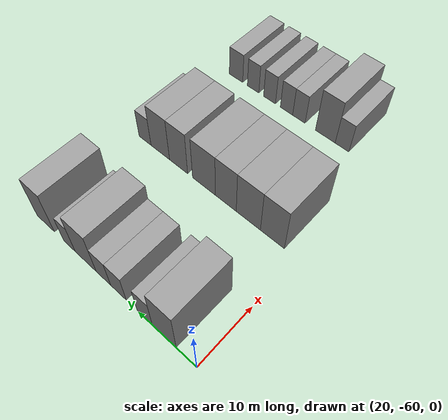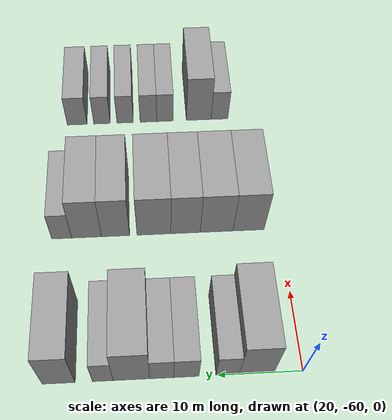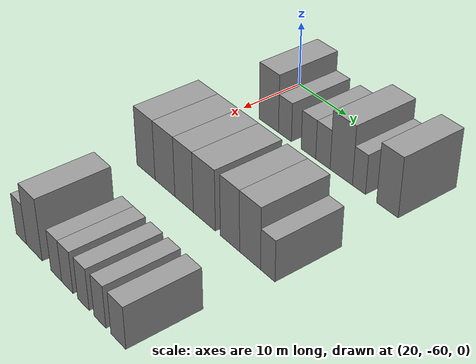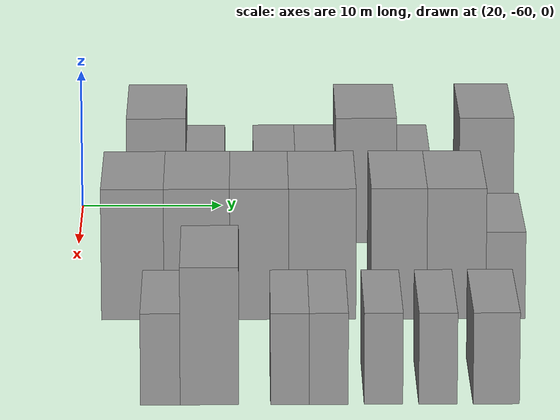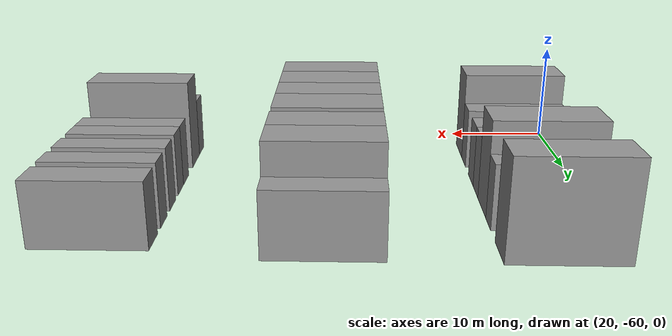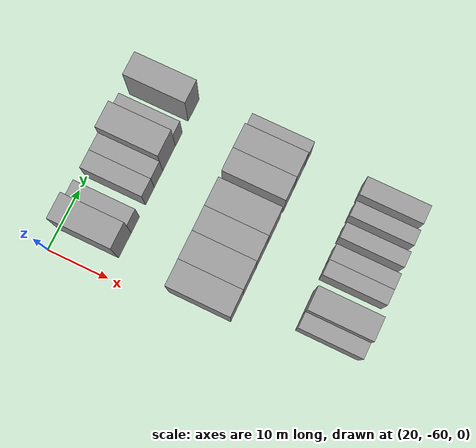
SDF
<sdf version="1.6">
 <world name="default">
  <model name="building_39">
   <static>1</static>
   <pose>25.0000 -54.5191 0 0.000000 0.000000 0.000000</pose>
   <link name="link">
    <pose>0 0 4.50 0 0 0</pose>
    <collision name="collision"><geometry><box><size>10.0000 4.1475 9.0000</size></box></geometry></collision>
    <visual name="visual">
     <cast_shadows>0</cast_shadows>
     <geometry><box><size>10.0000 4.1475 9.0000</size></box></geometry>
     <material>
      <script>
       <uri>model://grey_wall/materials/scripts</uri>
       <uri>model://grey_wall/materials/textures</uri>
       <name>vrc/grey_wall</name>
      </script>
     </material>
    </visual>
   </link>
  </model>
  <model name="building_40">
   <static>1</static>
   <pose>25.0000 -51.0883 0 0.000000 0.000000 0.000000</pose>
   <link name="link">
    <pose>0 0 3.00 0 0 0</pose>
    <collision name="collision"><geometry><box><size>10.0000 2.7141 6.0000</size></box></geometry></collision>
    <visual name="visual">
     <cast_shadows>0</cast_shadows>
     <geometry><box><size>10.0000 2.7141 6.0000</size></box></geometry>
     <material>
      <script>
       <uri>model://grey_wall/materials/scripts</uri>
       <uri>model://grey_wall/materials/textures</uri>
       <name>vrc/grey_wall</name>
      </script>
     </material>
    </visual>
   </link>
  </model>
  <model name="building_41">
   <static>1</static>
   <pose>25.0000 -46.2631 0 0.000000 0.000000 0.000000</pose>
   <link name="link">
    <pose>0 0 3.00 0 0 0</pose>
    <collision name="collision"><geometry><box><size>10.0000 2.9363 6.0000</size></box></geometry></collision>
    <visual name="visual">
     <cast_shadows>0</cast_shadows>
     <geometry><box><size>10.0000 2.9363 6.0000</size></box></geometry>
     <material>
      <script>
       <uri>model://grey_wall/materials/scripts</uri>
       <uri>model://grey_wall/materials/textures</uri>
       <name>vrc/grey_wall</name>
      </script>
     </material>
    </visual>
   </link>
  </model>
  <model name="building_42">
   <static>1</static>
   <pose>25.0000 -43.3785 0 0.000000 0.000000 0.000000</pose>
   <link name="link">
    <pose>0 0 3.00 0 0 0</pose>
    <collision name="collision"><geometry><box><size>10.0000 2.8329 6.0000</size></box></geometry></collision>
    <visual name="visual">
     <cast_shadows>0</cast_shadows>
     <geometry><box><size>10.0000 2.8329 6.0000</size></box></geometry>
     <material>
      <script>
       <uri>model://grey_wall/materials/scripts</uri>
       <uri>model://grey_wall/materials/textures</uri>
       <name>vrc/grey_wall</name>
      </script>
     </material>
    </visual>
   </link>
  </model>
  <model name="building_43">
   <static>1</static>
   <pose>25.0000 -39.8312 0 0.000000 0.000000 0.000000</pose>
   <link name="link">
    <pose>0 0 4.50 0 0 0</pose>
    <collision name="collision"><geometry><box><size>10.0000 4.2618 9.0000</size></box></geometry></collision>
    <visual name="visual">
     <cast_shadows>0</cast_shadows>
     <geometry><box><size>10.0000 4.2618 9.0000</size></box></geometry>
     <material>
      <script>
       <uri>model://grey_wall/materials/scripts</uri>
       <uri>model://grey_wall/materials/textures</uri>
       <name>vrc/grey_wall</name>
      </script>
     </material>
    </visual>
   </link>
  </model>
  <model name="building_44">
   <static>1</static>
   <pose>25.0000 -36.4992 0 0.000000 0.000000 0.000000</pose>
   <link name="link">
    <pose>0 0 3.00 0 0 0</pose>
    <collision name="collision"><geometry><box><size>10.0000 2.4022 6.0000</size></box></geometry></collision>
    <visual name="visual">
     <cast_shadows>0</cast_shadows>
     <geometry><box><size>10.0000 2.4022 6.0000</size></box></geometry>
     <material>
      <script>
       <uri>model://grey_wall/materials/scripts</uri>
       <uri>model://grey_wall/materials/textures</uri>
       <name>vrc/grey_wall</name>
      </script>
     </material>
    </visual>
   </link>
  </model>
  <model name="building_45">
   <static>1</static>
   <pose>25.0000 -31.3882 0 0.000000 0.000000 0.000000</pose>
   <link name="link">
    <pose>0 0 4.50 0 0 0</pose>
    <collision name="collision"><geometry><box><size>10.0000 3.8198 9.0000</size></box></geometry></collision>
    <visual name="visual">
     <cast_shadows>0</cast_shadows>
     <geometry><box><size>10.0000 3.8198 9.0000</size></box></geometry>
     <material>
      <script>
       <uri>model://grey_wall/materials/scripts</uri>
       <uri>model://grey_wall/materials/textures</uri>
       <name>vrc/grey_wall</name>
      </script>
     </material>
    </visual>
   </link>
  </model>
  <model name="building_153">
   <static>1</static>
   <pose>44.0000 -55.8276 0 0.000000 0.000000 0.000000</pose>
   <link name="link">
    <pose>0 0 4.50 0 0 0</pose>
    <collision name="collision"><geometry><box><size>10.0000 4.1650 9.0000</size></box></geometry></collision>
    <visual name="visual">
     <cast_shadows>0</cast_shadows>
     <geometry><box><size>10.0000 4.1650 9.0000</size></box></geometry>
     <material>
      <script>
       <uri>model://grey_wall/materials/scripts</uri>
       <uri>model://grey_wall/materials/textures</uri>
       <name>vrc/grey_wall</name>
      </script>
     </material>
    </visual>
   </link>
  </model>
  <model name="building_154">
   <static>1</static>
   <pose>44.0000 -51.5497 0 0.000000 0.000000 0.000000</pose>
   <link name="link">
    <pose>0 0 4.50 0 0 0</pose>
    <collision name="collision"><geometry><box><size>10.0000 4.3908 9.0000</size></box></geometry></collision>
    <visual name="visual">
     <cast_shadows>0</cast_shadows>
     <geometry><box><size>10.0000 4.3908 9.0000</size></box></geometry>
     <material>
      <script>
       <uri>model://grey_wall/materials/scripts</uri>
       <uri>model://grey_wall/materials/textures</uri>
       <name>vrc/grey_wall</name>
      </script>
     </material>
    </visual>
   </link>
  </model>
  <model name="building_155">
   <static>1</static>
   <pose>44.0000 -47.3965 0 0.000000 0.000000 0.000000</pose>
   <link name="link">
    <pose>0 0 4.50 0 0 0</pose>
    <collision name="collision"><geometry><box><size>10.0000 3.9158 9.0000</size></box></geometry></collision>
    <visual name="visual">
     <cast_shadows>0</cast_shadows>
     <geometry><box><size>10.0000 3.9158 9.0000</size></box></geometry>
     <material>
      <script>
       <uri>model://grey_wall/materials/scripts</uri>
       <uri>model://grey_wall/materials/textures</uri>
       <name>vrc/grey_wall</name>
      </script>
     </material>
    </visual>
   </link>
  </model>
  <model name="building_156">
   <static>1</static>
   <pose>44.0000 -43.1893 0 0.000000 0.000000 0.000000</pose>
   <link name="link">
    <pose>0 0 4.50 0 0 0</pose>
    <collision name="collision"><geometry><box><size>10.0000 4.4985 9.0000</size></box></geometry></collision>
    <visual name="visual">
     <cast_shadows>0</cast_shadows>
     <geometry><box><size>10.0000 4.4985 9.0000</size></box></geometry>
     <material>
      <script>
       <uri>model://grey_wall/materials/scripts</uri>
       <uri>model://grey_wall/materials/textures</uri>
       <name>vrc/grey_wall</name>
      </script>
     </material>
    </visual>
   </link>
  </model>
  <model name="building_157">
   <static>1</static>
   <pose>44.0000 -38.0757 0 0.000000 0.000000 0.000000</pose>
   <link name="link">
    <pose>0 0 4.50 0 0 0</pose>
    <collision name="collision"><geometry><box><size>10.0000 3.7287 9.0000</size></box></geometry></collision>
    <visual name="visual">
     <cast_shadows>0</cast_shadows>
     <geometry><box><size>10.0000 3.7287 9.0000</size></box></geometry>
     <material>
      <script>
       <uri>model://grey_wall/materials/scripts</uri>
       <uri>model://grey_wall/materials/textures</uri>
       <name>vrc/grey_wall</name>
      </script>
     </material>
    </visual>
   </link>
  </model>
  <model name="building_158">
   <static>1</static>
   <pose>44.0000 -34.2431 0 0.000000 0.000000 0.000000</pose>
   <link name="link">
    <pose>0 0 4.50 0 0 0</pose>
    <collision name="collision"><geometry><box><size>10.0000 3.9366 9.0000</size></box></geometry></collision>
    <visual name="visual">
     <cast_shadows>0</cast_shadows>
     <geometry><box><size>10.0000 3.9366 9.0000</size></box></geometry>
     <material>
      <script>
       <uri>model://grey_wall/materials/scripts</uri>
       <uri>model://grey_wall/materials/textures</uri>
       <name>vrc/grey_wall</name>
      </script>
     </material>
    </visual>
   </link>
  </model>
  <model name="building_159">
   <static>1</static>
   <pose>44.0000 -30.9606 0 0.000000 0.000000 0.000000</pose>
   <link name="link">
    <pose>0 0 3.00 0 0 0</pose>
    <collision name="collision"><geometry><box><size>10.0000 2.6282 6.0000</size></box></geometry></collision>
    <visual name="visual">
     <cast_shadows>0</cast_shadows>
     <geometry><box><size>10.0000 2.6282 6.0000</size></box></geometry>
     <material>
      <script>
       <uri>model://grey_wall/materials/scripts</uri>
       <uri>model://grey_wall/materials/textures</uri>
       <name>vrc/grey_wall</name>
      </script>
     </material>
    </visual>
   </link>
  </model>
  <model name="building_271">
   <static>1</static>
   <pose>63.0000 -53.7154 0 0.000000 0.000000 0.000000</pose>
   <link name="link">
    <pose>0 0 3.00 0 0 0</pose>
    <collision name="collision"><geometry><box><size>10.0000 2.5063 6.0000</size></box></geometry></collision>
    <visual name="visual">
     <cast_shadows>0</cast_shadows>
     <geometry><box><size>10.0000 2.5063 6.0000</size></box></geometry>
     <material>
      <script>
       <uri>model://grey_wall/materials/scripts</uri>
       <uri>model://grey_wall/materials/textures</uri>
       <name>vrc/grey_wall</name>
      </script>
     </material>
    </visual>
   </link>
  </model>
  <model name="building_272">
   <static>1</static>
   <pose>63.0000 -50.6076 0 0.000000 0.000000 0.000000</pose>
   <link name="link">
    <pose>0 0 4.50 0 0 0</pose>
    <collision name="collision"><geometry><box><size>10.0000 3.7092 9.0000</size></box></geometry></collision>
    <visual name="visual">
     <cast_shadows>0</cast_shadows>
     <geometry><box><size>10.0000 3.7092 9.0000</size></box></geometry>
     <material>
      <script>
       <uri>model://grey_wall/materials/scripts</uri>
       <uri>model://grey_wall/materials/textures</uri>
       <name>vrc/grey_wall</name>
      </script>
     </material>
    </visual>
   </link>
  </model>
  <model name="building_273">
   <static>1</static>
   <pose>63.0000 -45.5313 0 0.000000 0.000000 0.000000</pose>
   <link name="link">
    <pose>0 0 3.00 0 0 0</pose>
    <collision name="collision"><geometry><box><size>10.0000 2.4434 6.0000</size></box></geometry></collision>
    <visual name="visual">
     <cast_shadows>0</cast_shadows>
     <geometry><box><size>10.0000 2.4434 6.0000</size></box></geometry>
     <material>
      <script>
       <uri>model://grey_wall/materials/scripts</uri>
       <uri>model://grey_wall/materials/textures</uri>
       <name>vrc/grey_wall</name>
      </script>
     </material>
    </visual>
   </link>
  </model>
  <model name="building_274">
   <static>1</static>
   <pose>63.0000 -43.0745 0 0.000000 0.000000 0.000000</pose>
   <link name="link">
    <pose>0 0 3.00 0 0 0</pose>
    <collision name="collision"><geometry><box><size>10.0000 2.4702 6.0000</size></box></geometry></collision>
    <visual name="visual">
     <cast_shadows>0</cast_shadows>
     <geometry><box><size>10.0000 2.4702 6.0000</size></box></geometry>
     <material>
      <script>
       <uri>model://grey_wall/materials/scripts</uri>
       <uri>model://grey_wall/materials/textures</uri>
       <name>vrc/grey_wall</name>
      </script>
     </material>
    </visual>
   </link>
  </model>
  <model name="building_275">
   <static>1</static>
   <pose>63.0000 -39.6158 0 0.000000 0.000000 0.000000</pose>
   <link name="link">
    <pose>0 0 3.00 0 0 0</pose>
    <collision name="collision"><geometry><box><size>10.0000 2.4472 6.0000</size></box></geometry></collision>
    <visual name="visual">
     <cast_shadows>0</cast_shadows>
     <geometry><box><size>10.0000 2.4472 6.0000</size></box></geometry>
     <material>
      <script>
       <uri>model://grey_wall/materials/scripts</uri>
       <uri>model://grey_wall/materials/textures</uri>
       <name>vrc/grey_wall</name>
      </script>
     </material>
    </visual>
   </link>
  </model>
  <model name="building_276">
   <static>1</static>
   <pose>63.0000 -36.1729 0 0.000000 0.000000 0.000000</pose>
   <link name="link">
    <pose>0 0 3.00 0 0 0</pose>
    <collision name="collision"><geometry><box><size>10.0000 2.4386 6.0000</size></box></geometry></collision>
    <visual name="visual">
     <cast_shadows>0</cast_shadows>
     <geometry><box><size>10.0000 2.4386 6.0000</size></box></geometry>
     <material>
      <script>
       <uri>model://grey_wall/materials/scripts</uri>
       <uri>model://grey_wall/materials/textures</uri>
       <name>vrc/grey_wall</name>
      </script>
     </material>
    </visual>
   </link>
  </model>
  <model name="building_277">
   <static>1</static>
   <pose>63.0000 -32.4886 0 0.000000 0.000000 0.000000</pose>
   <link name="link">
    <pose>0 0 3.00 0 0 0</pose>
    <collision name="collision"><geometry><box><size>10.0000 2.9301 6.0000</size></box></geometry></collision>
    <visual name="visual">
     <cast_shadows>0</cast_shadows>
     <geometry><box><size>10.0000 2.9301 6.0000</size></box></geometry>
     <material>
      <script>
       <uri>model://grey_wall/materials/scripts</uri>
       <uri>model://grey_wall/materials/textures</uri>
       <name>vrc/grey_wall</name>
      </script>
     </material>
    </visual>
   </link>
  </model>
 </world>
</sdf>
